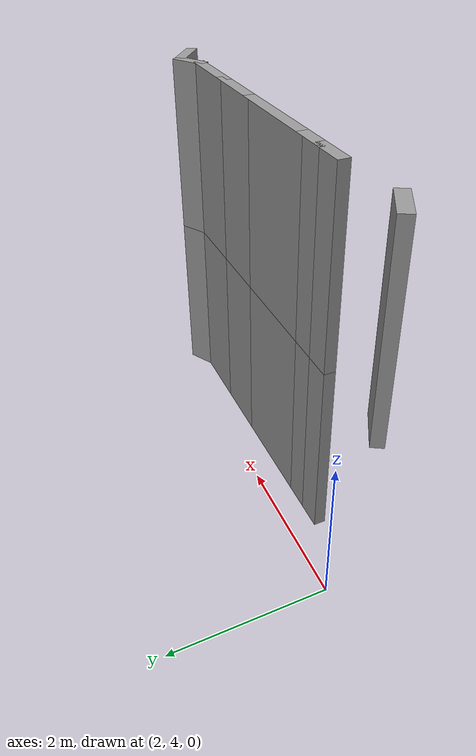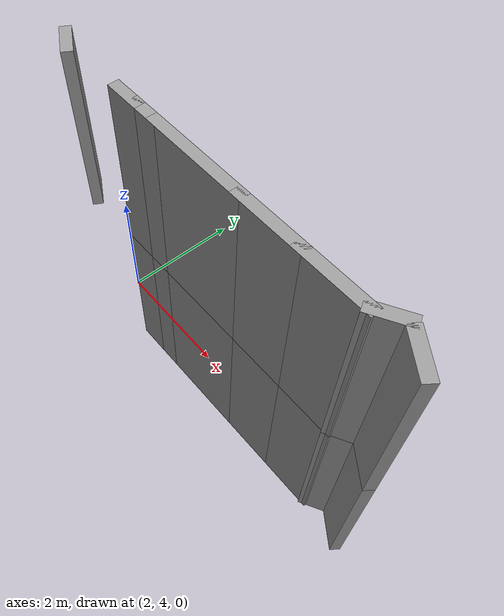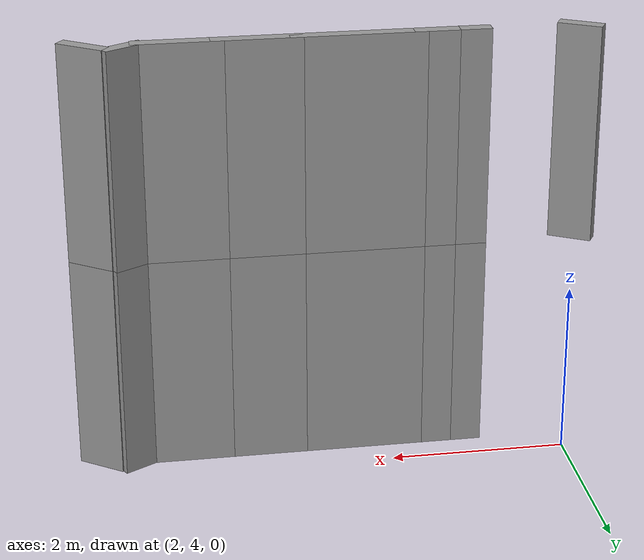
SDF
<sdf version="1.7">
 <model name="EnvDC01">
  <link name="Wall_135">
   <pose>7.2977 3.59466 0 0 -0 2.52004</pose>
   <visual name="Wall_135_Visual">
    <pose>0 0 1.25 0 -0 0</pose>
    <geometry><box><size>0.571407 0.15 2.5</size></box></geometry>
    <material>
     <script><uri>file://media/materials/scripts/gazebo.material</uri><name>Gazebo/Grey</name></script>
     <ambient>1 1 1 1</ambient>
     <shader type="pixel"/>
    </material>
    <meta><layer>0</layer></meta>
   </visual>
   <collision name="Wall_135_Collision">
    <pose>0 0 1.25 0 -0 0</pose>
    <geometry><box><size>0.571407 0.15 2.5</size></box></geometry>
    <surface>
     <friction>
      <ode><mu>1</mu><mu2>1</mu2><fdir1>0 0 0</fdir1><slip1>0</slip1><slip2>0</slip2></ode>
      <torsional>
       <coefficient>1</coefficient>
       <patch_radius>0</patch_radius>
       <surface_radius>0</surface_radius>
       <use_patch_radius>1</use_patch_radius>
       <ode><slip>0</slip></ode>
      </torsional>
     </friction>
     <bounce><restitution_coefficient>0</restitution_coefficient><threshold>1e+06</threshold></bounce>
     <contact>
      <collide_without_contact>0</collide_without_contact>
      <collide_without_contact_bitmask>1</collide_without_contact_bitmask>
      <collide_bitmask>1</collide_bitmask>
      <ode>
       <soft_cfm>0</soft_cfm>
       <soft_erp>0.2</soft_erp>
       <kp>1e+13</kp>
       <kd>1</kd>
       <max_vel>0.01</max_vel>
       <min_depth>0</min_depth>
      </ode>
      <bullet>
       <split_impulse>1</split_impulse>
       <split_impulse_penetration_threshold>-0.01</split_impulse_penetration_threshold>
       <soft_cfm>0</soft_cfm>
       <soft_erp>0.2</soft_erp>
       <kp>1e+13</kp>
       <kd>1</kd>
      </bullet>
     </contact>
    </surface>
   </collision>
  </link>
  <link name="Wall_143">
   <pose>6.88604 3.68358 0 0 0 -2.61799</pose>
   <visual name="Wall_143_Visual">
    <pose>0 0 1.25 0 -0 0</pose>
    <geometry><box><size>0.5 0.15 2.5</size></box></geometry>
    <material>
     <script><uri>file://media/materials/scripts/gazebo.material</uri><name>Gazebo/Grey</name></script>
     <ambient>1 1 1 1</ambient>
     <shader type="pixel"/>
    </material>
    <meta><layer>0</layer></meta>
   </visual>
   <collision name="Wall_143_Collision">
    <pose>0 0 1.25 0 -0 0</pose>
    <geometry><box><size>0.5 0.15 2.5</size></box></geometry>
    <surface>
     <friction>
      <ode><mu>1</mu><mu2>1</mu2><fdir1>0 0 0</fdir1><slip1>0</slip1><slip2>0</slip2></ode>
      <torsional>
       <coefficient>1</coefficient>
       <patch_radius>0</patch_radius>
       <surface_radius>0</surface_radius>
       <use_patch_radius>1</use_patch_radius>
       <ode><slip>0</slip></ode>
      </torsional>
     </friction>
     <bounce><restitution_coefficient>0</restitution_coefficient><threshold>1e+06</threshold></bounce>
     <contact>
      <collide_without_contact>0</collide_without_contact>
      <collide_without_contact_bitmask>1</collide_without_contact_bitmask>
      <collide_bitmask>1</collide_bitmask>
      <ode>
       <soft_cfm>0</soft_cfm>
       <soft_erp>0.2</soft_erp>
       <kp>1e+13</kp>
       <kd>1</kd>
       <max_vel>0.01</max_vel>
       <min_depth>0</min_depth>
      </ode>
      <bullet>
       <split_impulse>1</split_impulse>
       <split_impulse_penetration_threshold>-0.01</split_impulse_penetration_threshold>
       <soft_cfm>0</soft_cfm>
       <soft_erp>0.2</soft_erp>
       <kp>1e+13</kp>
       <kd>1</kd>
      </bullet>
     </contact>
    </surface>
   </collision>
  </link>
  <link name="Wall_144">
   <pose>6.30949 3.59608 0 0 -0 3.14159</pose>
   <visual name="Wall_144_Visual">
    <pose>0 0 1.25 0 -0 0</pose>
    <geometry><box><size>1 0.15 2.5</size></box></geometry>
    <material>
     <script><uri>file://media/materials/scripts/gazebo.material</uri><name>Gazebo/Grey</name></script>
     <ambient>1 1 1 1</ambient>
     <shader type="pixel"/>
    </material>
    <meta><layer>0</layer></meta>
   </visual>
   <collision name="Wall_144_Collision">
    <pose>0 0 1.25 0 -0 0</pose>
    <geometry><box><size>1 0.15 2.5</size></box></geometry>
    <surface>
     <friction>
      <ode><mu>1</mu><mu2>1</mu2><fdir1>0 0 0</fdir1><slip1>0</slip1><slip2>0</slip2></ode>
      <torsional>
       <coefficient>1</coefficient>
       <patch_radius>0</patch_radius>
       <surface_radius>0</surface_radius>
       <use_patch_radius>1</use_patch_radius>
       <ode><slip>0</slip></ode>
      </torsional>
     </friction>
     <bounce><restitution_coefficient>0</restitution_coefficient><threshold>1e+06</threshold></bounce>
     <contact>
      <collide_without_contact>0</collide_without_contact>
      <collide_without_contact_bitmask>1</collide_without_contact_bitmask>
      <collide_bitmask>1</collide_bitmask>
      <ode>
       <soft_cfm>0</soft_cfm>
       <soft_erp>0.2</soft_erp>
       <kp>1e+13</kp>
       <kd>1</kd>
       <max_vel>0.01</max_vel>
       <min_depth>0</min_depth>
      </ode>
      <bullet>
       <split_impulse>1</split_impulse>
       <split_impulse_penetration_threshold>-0.01</split_impulse_penetration_threshold>
       <soft_cfm>0</soft_cfm>
       <soft_erp>0.2</soft_erp>
       <kp>1e+13</kp>
       <kd>1</kd>
      </bullet>
     </contact>
    </surface>
   </collision>
  </link>
  <link name="Wall_146">
   <pose>5.45949 3.59608 0 0 -0 3.14159</pose>
   <visual name="Wall_146_Visual">
    <pose>0 0 1.25 0 -0 0</pose>
    <geometry><box><size>1 0.15 2.5</size></box></geometry>
    <material>
     <script><uri>file://media/materials/scripts/gazebo.material</uri><name>Gazebo/Grey</name></script>
     <ambient>1 1 1 1</ambient>
     <shader type="pixel"/>
    </material>
    <meta><layer>0</layer></meta>
   </visual>
   <collision name="Wall_146_Collision">
    <pose>0 0 1.25 0 -0 0</pose>
    <geometry><box><size>1 0.15 2.5</size></box></geometry>
    <surface>
     <friction>
      <ode><mu>1</mu><mu2>1</mu2><fdir1>0 0 0</fdir1><slip1>0</slip1><slip2>0</slip2></ode>
      <torsional>
       <coefficient>1</coefficient>
       <patch_radius>0</patch_radius>
       <surface_radius>0</surface_radius>
       <use_patch_radius>1</use_patch_radius>
       <ode><slip>0</slip></ode>
      </torsional>
     </friction>
     <bounce><restitution_coefficient>0</restitution_coefficient><threshold>1e+06</threshold></bounce>
     <contact>
      <collide_without_contact>0</collide_without_contact>
      <collide_without_contact_bitmask>1</collide_without_contact_bitmask>
      <collide_bitmask>1</collide_bitmask>
      <ode>
       <soft_cfm>0</soft_cfm>
       <soft_erp>0.2</soft_erp>
       <kp>1e+13</kp>
       <kd>1</kd>
       <max_vel>0.01</max_vel>
       <min_depth>0</min_depth>
      </ode>
      <bullet>
       <split_impulse>1</split_impulse>
       <split_impulse_penetration_threshold>-0.01</split_impulse_penetration_threshold>
       <soft_cfm>0</soft_cfm>
       <soft_erp>0.2</soft_erp>
       <kp>1e+13</kp>
       <kd>1</kd>
      </bullet>
     </contact>
    </surface>
   </collision>
  </link>
  <link name="Wall_147">
   <pose>4.35949 3.59608 0 0 -0 3.14159</pose>
   <visual name="Wall_147_Visual">
    <pose>0 0 1.25 0 -0 0</pose>
    <geometry><box><size>1.5 0.15 2.5</size></box></geometry>
    <material>
     <script><uri>file://media/materials/scripts/gazebo.material</uri><name>Gazebo/Grey</name></script>
     <ambient>1 1 1 1</ambient>
     <shader type="pixel"/>
    </material>
    <meta><layer>0</layer></meta>
   </visual>
   <collision name="Wall_147_Collision">
    <pose>0 0 1.25 0 -0 0</pose>
    <geometry><box><size>1.5 0.15 2.5</size></box></geometry>
    <surface>
     <friction>
      <ode><mu>1</mu><mu2>1</mu2><fdir1>0 0 0</fdir1><slip1>0</slip1><slip2>0</slip2></ode>
      <torsional>
       <coefficient>1</coefficient>
       <patch_radius>0</patch_radius>
       <surface_radius>0</surface_radius>
       <use_patch_radius>1</use_patch_radius>
       <ode><slip>0</slip></ode>
      </torsional>
     </friction>
     <bounce><restitution_coefficient>0</restitution_coefficient><threshold>1e+06</threshold></bounce>
     <contact>
      <collide_without_contact>0</collide_without_contact>
      <collide_without_contact_bitmask>1</collide_without_contact_bitmask>
      <collide_bitmask>1</collide_bitmask>
      <ode>
       <soft_cfm>0</soft_cfm>
       <soft_erp>0.2</soft_erp>
       <kp>1e+13</kp>
       <kd>1</kd>
       <max_vel>0.01</max_vel>
       <min_depth>0</min_depth>
      </ode>
      <bullet>
       <split_impulse>1</split_impulse>
       <split_impulse_penetration_threshold>-0.01</split_impulse_penetration_threshold>
       <soft_cfm>0</soft_cfm>
       <soft_erp>0.2</soft_erp>
       <kp>1e+13</kp>
       <kd>1</kd>
      </bullet>
     </contact>
    </surface>
   </collision>
  </link>
  <link name="Wall_148">
   <pose>3.50949 3.59608 0 0 -0 3.14159</pose>
   <visual name="Wall_148_Visual">
    <pose>0 0 1.25 0 -0 0</pose>
    <geometry><box><size>0.5 0.15 2.5</size></box></geometry>
    <material>
     <script><uri>file://media/materials/scripts/gazebo.material</uri><name>Gazebo/Grey</name></script>
     <ambient>1 1 1 1</ambient>
     <shader type="pixel"/>
    </material>
    <meta><layer>0</layer></meta>
   </visual>
   <collision name="Wall_148_Collision">
    <pose>0 0 1.25 0 -0 0</pose>
    <geometry><box><size>0.5 0.15 2.5</size></box></geometry>
    <surface>
     <friction>
      <ode><mu>1</mu><mu2>1</mu2><fdir1>0 0 0</fdir1><slip1>0</slip1><slip2>0</slip2></ode>
      <torsional>
       <coefficient>1</coefficient>
       <patch_radius>0</patch_radius>
       <surface_radius>0</surface_radius>
       <use_patch_radius>1</use_patch_radius>
       <ode><slip>0</slip></ode>
      </torsional>
     </friction>
     <bounce><restitution_coefficient>0</restitution_coefficient><threshold>1e+06</threshold></bounce>
     <contact>
      <collide_without_contact>0</collide_without_contact>
      <collide_without_contact_bitmask>1</collide_without_contact_bitmask>
      <collide_bitmask>1</collide_bitmask>
      <ode>
       <soft_cfm>0</soft_cfm>
       <soft_erp>0.2</soft_erp>
       <kp>1e+13</kp>
       <kd>1</kd>
       <max_vel>0.01</max_vel>
       <min_depth>0</min_depth>
      </ode>
      <bullet>
       <split_impulse>1</split_impulse>
       <split_impulse_penetration_threshold>-0.01</split_impulse_penetration_threshold>
       <soft_cfm>0</soft_cfm>
       <soft_erp>0.2</soft_erp>
       <kp>1e+13</kp>
       <kd>1</kd>
      </bullet>
     </contact>
    </surface>
   </collision>
  </link>
  <link name="Wall_149">
   <pose>3.15949 3.59608 0 0 -0 3.14159</pose>
   <visual name="Wall_149_Visual">
    <pose>0 0 1.25 0 -0 0</pose>
    <geometry><box><size>0.5 0.15 2.5</size></box></geometry>
    <material>
     <script><uri>file://media/materials/scripts/gazebo.material</uri><name>Gazebo/Grey</name></script>
     <ambient>1 1 1 1</ambient>
     <shader type="pixel"/>
    </material>
    <meta><layer>0</layer></meta>
   </visual>
   <collision name="Wall_149_Collision">
    <pose>0 0 1.25 0 -0 0</pose>
    <geometry><box><size>0.5 0.15 2.5</size></box></geometry>
    <surface>
     <friction>
      <ode><mu>1</mu><mu2>1</mu2><fdir1>0 0 0</fdir1><slip1>0</slip1><slip2>0</slip2></ode>
      <torsional>
       <coefficient>1</coefficient>
       <patch_radius>0</patch_radius>
       <surface_radius>0</surface_radius>
       <use_patch_radius>1</use_patch_radius>
       <ode><slip>0</slip></ode>
      </torsional>
     </friction>
     <bounce><restitution_coefficient>0</restitution_coefficient><threshold>1e+06</threshold></bounce>
     <contact>
      <collide_without_contact>0</collide_without_contact>
      <collide_without_contact_bitmask>1</collide_without_contact_bitmask>
      <collide_bitmask>1</collide_bitmask>
      <ode>
       <soft_cfm>0</soft_cfm>
       <soft_erp>0.2</soft_erp>
       <kp>1e+13</kp>
       <kd>1</kd>
       <max_vel>0.01</max_vel>
       <min_depth>0</min_depth>
      </ode>
      <bullet>
       <split_impulse>1</split_impulse>
       <split_impulse_penetration_threshold>-0.01</split_impulse_penetration_threshold>
       <soft_cfm>0</soft_cfm>
       <soft_erp>0.2</soft_erp>
       <kp>1e+13</kp>
       <kd>1</kd>
      </bullet>
     </contact>
    </surface>
   </collision>
  </link>
  <link name="Wall_331">
   <pose>7.2977 3.59466 2.5 0 -0 2.52004</pose>
   <visual name="Wall_331_Visual">
    <pose>0 0 1.25 0 -0 0</pose>
    <geometry><box><size>0.571407 0.15 2.5</size></box></geometry>
    <material>
     <script><uri>file://media/materials/scripts/gazebo.material</uri><name>Gazebo/Grey</name></script>
     <ambient>1 1 1 1</ambient>
     <shader type="pixel"/>
    </material>
    <meta><layer>1</layer></meta>
   </visual>
   <collision name="Wall_331_Collision">
    <pose>0 0 1.25 0 -0 0</pose>
    <geometry><box><size>0.571407 0.15 2.5</size></box></geometry>
    <surface>
     <friction>
      <ode><mu>1</mu><mu2>1</mu2><fdir1>0 0 0</fdir1><slip1>0</slip1><slip2>0</slip2></ode>
      <torsional>
       <coefficient>1</coefficient>
       <patch_radius>0</patch_radius>
       <surface_radius>0</surface_radius>
       <use_patch_radius>1</use_patch_radius>
       <ode><slip>0</slip></ode>
      </torsional>
     </friction>
     <bounce><restitution_coefficient>0</restitution_coefficient><threshold>1e+06</threshold></bounce>
     <contact>
      <collide_without_contact>0</collide_without_contact>
      <collide_without_contact_bitmask>1</collide_without_contact_bitmask>
      <collide_bitmask>1</collide_bitmask>
      <ode>
       <soft_cfm>0</soft_cfm>
       <soft_erp>0.2</soft_erp>
       <kp>1e+13</kp>
       <kd>1</kd>
       <max_vel>0.01</max_vel>
       <min_depth>0</min_depth>
      </ode>
      <bullet>
       <split_impulse>1</split_impulse>
       <split_impulse_penetration_threshold>-0.01</split_impulse_penetration_threshold>
       <soft_cfm>0</soft_cfm>
       <soft_erp>0.2</soft_erp>
       <kp>1e+13</kp>
       <kd>1</kd>
      </bullet>
     </contact>
    </surface>
   </collision>
  </link>
  <link name="Wall_333">
   <pose>6.88604 3.68358 2.5 0 0 -2.61799</pose>
   <visual name="Wall_333_Visual">
    <pose>0 0 1.25 0 -0 0</pose>
    <geometry><box><size>0.5 0.15 2.5</size></box></geometry>
    <material>
     <script><uri>file://media/materials/scripts/gazebo.material</uri><name>Gazebo/Grey</name></script>
     <ambient>1 1 1 1</ambient>
     <shader type="pixel"/>
    </material>
    <meta><layer>1</layer></meta>
   </visual>
   <collision name="Wall_333_Collision">
    <pose>0 0 1.25 0 -0 0</pose>
    <geometry><box><size>0.5 0.15 2.5</size></box></geometry>
    <surface>
     <friction>
      <ode><mu>1</mu><mu2>1</mu2><fdir1>0 0 0</fdir1><slip1>0</slip1><slip2>0</slip2></ode>
      <torsional>
       <coefficient>1</coefficient>
       <patch_radius>0</patch_radius>
       <surface_radius>0</surface_radius>
       <use_patch_radius>1</use_patch_radius>
       <ode><slip>0</slip></ode>
      </torsional>
     </friction>
     <bounce><restitution_coefficient>0</restitution_coefficient><threshold>1e+06</threshold></bounce>
     <contact>
      <collide_without_contact>0</collide_without_contact>
      <collide_without_contact_bitmask>1</collide_without_contact_bitmask>
      <collide_bitmask>1</collide_bitmask>
      <ode>
       <soft_cfm>0</soft_cfm>
       <soft_erp>0.2</soft_erp>
       <kp>1e+13</kp>
       <kd>1</kd>
       <max_vel>0.01</max_vel>
       <min_depth>0</min_depth>
      </ode>
      <bullet>
       <split_impulse>1</split_impulse>
       <split_impulse_penetration_threshold>-0.01</split_impulse_penetration_threshold>
       <soft_cfm>0</soft_cfm>
       <soft_erp>0.2</soft_erp>
       <kp>1e+13</kp>
       <kd>1</kd>
      </bullet>
     </contact>
    </surface>
   </collision>
  </link>
  <link name="Wall_334">
   <pose>6.30949 3.59608 2.5 0 -0 3.14159</pose>
   <visual name="Wall_334_Visual">
    <pose>0 0 1.25 0 -0 0</pose>
    <geometry><box><size>1 0.15 2.5</size></box></geometry>
    <material>
     <script><uri>file://media/materials/scripts/gazebo.material</uri><name>Gazebo/Grey</name></script>
     <ambient>1 1 1 1</ambient>
     <shader type="pixel"/>
    </material>
    <meta><layer>1</layer></meta>
   </visual>
   <collision name="Wall_334_Collision">
    <pose>0 0 1.25 0 -0 0</pose>
    <geometry><box><size>1 0.15 2.5</size></box></geometry>
    <surface>
     <friction>
      <ode><mu>1</mu><mu2>1</mu2><fdir1>0 0 0</fdir1><slip1>0</slip1><slip2>0</slip2></ode>
      <torsional>
       <coefficient>1</coefficient>
       <patch_radius>0</patch_radius>
       <surface_radius>0</surface_radius>
       <use_patch_radius>1</use_patch_radius>
       <ode><slip>0</slip></ode>
      </torsional>
     </friction>
     <bounce><restitution_coefficient>0</restitution_coefficient><threshold>1e+06</threshold></bounce>
     <contact>
      <collide_without_contact>0</collide_without_contact>
      <collide_without_contact_bitmask>1</collide_without_contact_bitmask>
      <collide_bitmask>1</collide_bitmask>
      <ode>
       <soft_cfm>0</soft_cfm>
       <soft_erp>0.2</soft_erp>
       <kp>1e+13</kp>
       <kd>1</kd>
       <max_vel>0.01</max_vel>
       <min_depth>0</min_depth>
      </ode>
      <bullet>
       <split_impulse>1</split_impulse>
       <split_impulse_penetration_threshold>-0.01</split_impulse_penetration_threshold>
       <soft_cfm>0</soft_cfm>
       <soft_erp>0.2</soft_erp>
       <kp>1e+13</kp>
       <kd>1</kd>
      </bullet>
     </contact>
    </surface>
   </collision>
  </link>
  <link name="Wall_335">
   <pose>5.45949 3.59608 2.5 0 -0 3.14159</pose>
   <visual name="Wall_335_Visual">
    <pose>0 0 1.25 0 -0 0</pose>
    <geometry><box><size>1 0.15 2.5</size></box></geometry>
    <material>
     <script><uri>file://media/materials/scripts/gazebo.material</uri><name>Gazebo/Grey</name></script>
     <ambient>1 1 1 1</ambient>
     <shader type="pixel"/>
    </material>
    <meta><layer>1</layer></meta>
   </visual>
   <collision name="Wall_335_Collision">
    <pose>0 0 1.25 0 -0 0</pose>
    <geometry><box><size>1 0.15 2.5</size></box></geometry>
    <surface>
     <friction>
      <ode><mu>1</mu><mu2>1</mu2><fdir1>0 0 0</fdir1><slip1>0</slip1><slip2>0</slip2></ode>
      <torsional>
       <coefficient>1</coefficient>
       <patch_radius>0</patch_radius>
       <surface_radius>0</surface_radius>
       <use_patch_radius>1</use_patch_radius>
       <ode><slip>0</slip></ode>
      </torsional>
     </friction>
     <bounce><restitution_coefficient>0</restitution_coefficient><threshold>1e+06</threshold></bounce>
     <contact>
      <collide_without_contact>0</collide_without_contact>
      <collide_without_contact_bitmask>1</collide_without_contact_bitmask>
      <collide_bitmask>1</collide_bitmask>
      <ode>
       <soft_cfm>0</soft_cfm>
       <soft_erp>0.2</soft_erp>
       <kp>1e+13</kp>
       <kd>1</kd>
       <max_vel>0.01</max_vel>
       <min_depth>0</min_depth>
      </ode>
      <bullet>
       <split_impulse>1</split_impulse>
       <split_impulse_penetration_threshold>-0.01</split_impulse_penetration_threshold>
       <soft_cfm>0</soft_cfm>
       <soft_erp>0.2</soft_erp>
       <kp>1e+13</kp>
       <kd>1</kd>
      </bullet>
     </contact>
    </surface>
   </collision>
  </link>
  <link name="Wall_336">
   <pose>4.35949 3.59608 2.5 0 -0 3.14159</pose>
   <visual name="Wall_336_Visual">
    <pose>0 0 1.25 0 -0 0</pose>
    <geometry><box><size>1.5 0.15 2.5</size></box></geometry>
    <material>
     <script><uri>file://media/materials/scripts/gazebo.material</uri><name>Gazebo/Grey</name></script>
     <ambient>1 1 1 1</ambient>
     <shader type="pixel"/>
    </material>
    <meta><layer>1</layer></meta>
   </visual>
   <collision name="Wall_336_Collision">
    <pose>0 0 1.25 0 -0 0</pose>
    <geometry><box><size>1.5 0.15 2.5</size></box></geometry>
    <surface>
     <friction>
      <ode><mu>1</mu><mu2>1</mu2><fdir1>0 0 0</fdir1><slip1>0</slip1><slip2>0</slip2></ode>
      <torsional>
       <coefficient>1</coefficient>
       <patch_radius>0</patch_radius>
       <surface_radius>0</surface_radius>
       <use_patch_radius>1</use_patch_radius>
       <ode><slip>0</slip></ode>
      </torsional>
     </friction>
     <bounce><restitution_coefficient>0</restitution_coefficient><threshold>1e+06</threshold></bounce>
     <contact>
      <collide_without_contact>0</collide_without_contact>
      <collide_without_contact_bitmask>1</collide_without_contact_bitmask>
      <collide_bitmask>1</collide_bitmask>
      <ode>
       <soft_cfm>0</soft_cfm>
       <soft_erp>0.2</soft_erp>
       <kp>1e+13</kp>
       <kd>1</kd>
       <max_vel>0.01</max_vel>
       <min_depth>0</min_depth>
      </ode>
      <bullet>
       <split_impulse>1</split_impulse>
       <split_impulse_penetration_threshold>-0.01</split_impulse_penetration_threshold>
       <soft_cfm>0</soft_cfm>
       <soft_erp>0.2</soft_erp>
       <kp>1e+13</kp>
       <kd>1</kd>
      </bullet>
     </contact>
    </surface>
   </collision>
  </link>
  <link name="Wall_337">
   <pose>3.50949 3.59608 2.5 0 -0 3.14159</pose>
   <visual name="Wall_337_Visual">
    <pose>0 0 1.25 0 -0 0</pose>
    <geometry><box><size>0.5 0.15 2.5</size></box></geometry>
    <material>
     <script><uri>file://media/materials/scripts/gazebo.material</uri><name>Gazebo/Grey</name></script>
     <ambient>1 1 1 1</ambient>
     <shader type="pixel"/>
    </material>
    <meta><layer>1</layer></meta>
   </visual>
   <collision name="Wall_337_Collision">
    <pose>0 0 1.25 0 -0 0</pose>
    <geometry><box><size>0.5 0.15 2.5</size></box></geometry>
    <surface>
     <friction>
      <ode><mu>1</mu><mu2>1</mu2><fdir1>0 0 0</fdir1><slip1>0</slip1><slip2>0</slip2></ode>
      <torsional>
       <coefficient>1</coefficient>
       <patch_radius>0</patch_radius>
       <surface_radius>0</surface_radius>
       <use_patch_radius>1</use_patch_radius>
       <ode><slip>0</slip></ode>
      </torsional>
     </friction>
     <bounce><restitution_coefficient>0</restitution_coefficient><threshold>1e+06</threshold></bounce>
     <contact>
      <collide_without_contact>0</collide_without_contact>
      <collide_without_contact_bitmask>1</collide_without_contact_bitmask>
      <collide_bitmask>1</collide_bitmask>
      <ode>
       <soft_cfm>0</soft_cfm>
       <soft_erp>0.2</soft_erp>
       <kp>1e+13</kp>
       <kd>1</kd>
       <max_vel>0.01</max_vel>
       <min_depth>0</min_depth>
      </ode>
      <bullet>
       <split_impulse>1</split_impulse>
       <split_impulse_penetration_threshold>-0.01</split_impulse_penetration_threshold>
       <soft_cfm>0</soft_cfm>
       <soft_erp>0.2</soft_erp>
       <kp>1e+13</kp>
       <kd>1</kd>
      </bullet>
     </contact>
    </surface>
   </collision>
  </link>
  <link name="Wall_338">
   <pose>3.15949 3.59608 2.5 0 -0 3.14159</pose>
   <visual name="Wall_338_Visual">
    <pose>0 0 1.25 0 -0 0</pose>
    <geometry><box><size>0.5 0.15 2.5</size></box></geometry>
    <material>
     <script><uri>file://media/materials/scripts/gazebo.material</uri><name>Gazebo/Grey</name></script>
     <ambient>1 1 1 1</ambient>
     <shader type="pixel"/>
    </material>
    <meta><layer>1</layer></meta>
   </visual>
   <collision name="Wall_338_Collision">
    <pose>0 0 1.25 0 -0 0</pose>
    <geometry><box><size>0.5 0.15 2.5</size></box></geometry>
    <surface>
     <friction>
      <ode><mu>1</mu><mu2>1</mu2><fdir1>0 0 0</fdir1><slip1>0</slip1><slip2>0</slip2></ode>
      <torsional>
       <coefficient>1</coefficient>
       <patch_radius>0</patch_radius>
       <surface_radius>0</surface_radius>
       <use_patch_radius>1</use_patch_radius>
       <ode><slip>0</slip></ode>
      </torsional>
     </friction>
     <bounce><restitution_coefficient>0</restitution_coefficient><threshold>1e+06</threshold></bounce>
     <contact>
      <collide_without_contact>0</collide_without_contact>
      <collide_without_contact_bitmask>1</collide_without_contact_bitmask>
      <collide_bitmask>1</collide_bitmask>
      <ode>
       <soft_cfm>0</soft_cfm>
       <soft_erp>0.2</soft_erp>
       <kp>1e+13</kp>
       <kd>1</kd>
       <max_vel>0.01</max_vel>
       <min_depth>0</min_depth>
      </ode>
      <bullet>
       <split_impulse>1</split_impulse>
       <split_impulse_penetration_threshold>-0.01</split_impulse_penetration_threshold>
       <soft_cfm>0</soft_cfm>
       <soft_erp>0.2</soft_erp>
       <kp>1e+13</kp>
       <kd>1</kd>
      </bullet>
     </contact>
    </surface>
   </collision>
  </link>
  <link name="Wall_341">
   <pose>1.91531 3.61888 2.5 0 -0 2.61799</pose>
   <visual name="Wall_341_Visual">
    <pose>0 0 1.25 0 -0 0</pose>
    <geometry><box><size>0.5 0.15 2.5</size></box></geometry>
    <material>
     <script><uri>file://media/materials/scripts/gazebo.material</uri><name>Gazebo/Grey</name></script>
     <ambient>1 1 1 1</ambient>
     <shader type="pixel"/>
    </material>
    <meta><layer>1</layer></meta>
   </visual>
   <collision name="Wall_341_Collision">
    <pose>0 0 1.25 0 -0 0</pose>
    <geometry><box><size>0.5 0.15 2.5</size></box></geometry>
    <surface>
     <friction>
      <ode><mu>1</mu><mu2>1</mu2><fdir1>0 0 0</fdir1><slip1>0</slip1><slip2>0</slip2></ode>
      <torsional>
       <coefficient>1</coefficient>
       <patch_radius>0</patch_radius>
       <surface_radius>0</surface_radius>
       <use_patch_radius>1</use_patch_radius>
       <ode><slip>0</slip></ode>
      </torsional>
     </friction>
     <bounce><restitution_coefficient>0</restitution_coefficient><threshold>1e+06</threshold></bounce>
     <contact>
      <collide_without_contact>0</collide_without_contact>
      <collide_without_contact_bitmask>1</collide_without_contact_bitmask>
      <collide_bitmask>1</collide_bitmask>
      <ode>
       <soft_cfm>0</soft_cfm>
       <soft_erp>0.2</soft_erp>
       <kp>1e+13</kp>
       <kd>1</kd>
       <max_vel>0.01</max_vel>
       <min_depth>0</min_depth>
      </ode>
      <bullet>
       <split_impulse>1</split_impulse>
       <split_impulse_penetration_threshold>-0.01</split_impulse_penetration_threshold>
       <soft_cfm>0</soft_cfm>
       <soft_erp>0.2</soft_erp>
       <kp>1e+13</kp>
       <kd>1</kd>
      </bullet>
     </contact>
    </surface>
   </collision>
  </link>
  <static>1</static>
 </model>
</sdf>
